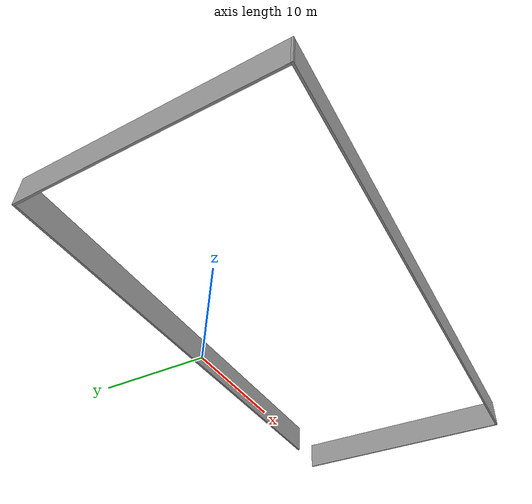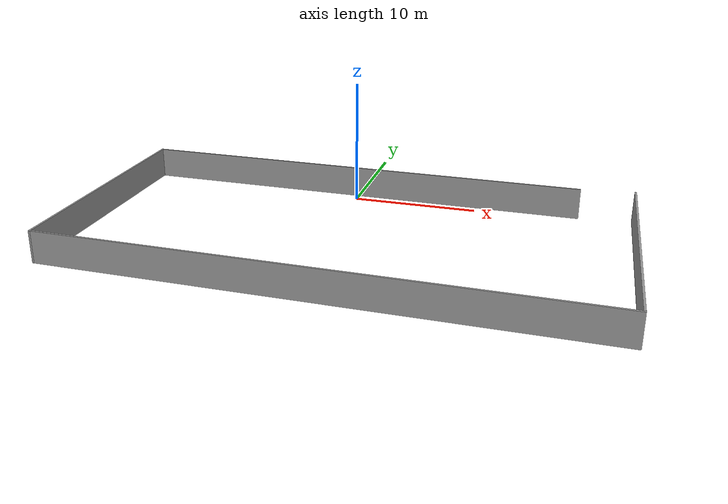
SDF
<?xml version='1.0'?>
<sdf version='1.6'>
  <model name='assignment_room'>
    <pose frame=''>1.89682 -8.62625 0 0 -0 0</pose>
    <link name='Wall_10'>
      <collision name='Wall_10_Collision'>
        <geometry>
          <box>
            <size>41.25 0.15 2.5</size>
          </box>
        </geometry>
        <pose frame=''>0 0 1.25 0 -0 0</pose>
      </collision>
      <visual name='Wall_10_Visual'>
        <pose frame=''>0 0 1.25 0 -0 0</pose>
        <geometry>
          <box>
            <size>41.25 0.15 2.5</size>
          </box>
        </geometry>
        <material>
          <script>
            <uri>file://media/materials/scripts/gazebo.material</uri>
            <name>Gazebo/Grey</name>
          </script>
          <ambient>1 1 1 1</ambient>
        </material>
        <meta>
          <layer>0</layer>
        </meta>
      </visual>
      <pose frame=''>0 -9.925 0 0 -0 3.14159</pose>
    </link>
    <link name='Wall_12'>
      <collision name='Wall_12_Collision'>
        <geometry>
          <box>
            <size>20 0.15 2.5</size>
          </box>
        </geometry>
        <pose frame=''>0 0 1.25 0 -0 0</pose>
      </collision>
      <visual name='Wall_12_Visual'>
        <pose frame=''>0 0 1.25 0 -0 0</pose>
        <geometry>
          <box>
            <size>20 0.15 2.5</size>
          </box>
        </geometry>
        <material>
          <script>
            <uri>file://media/materials/scripts/gazebo.material</uri>
            <name>Gazebo/Grey</name>
          </script>
          <ambient>1 1 1 1</ambient>
        </material>
        <meta>
          <layer>0</layer>
        </meta>
      </visual>
      <pose frame=''>20.55 0 0 0 -0 1.5708</pose>
    </link>
    <link name='Wall_15'>
      <collision name='Wall_15_Collision'>
        <geometry>
          <box>
            <size>19.5 0.15 2.5</size>
          </box>
        </geometry>
        <pose frame=''>0 0 1.25 0 -0 0</pose>
      </collision>
      <visual name='Wall_15_Visual'>
        <pose frame=''>0 0 1.25 0 -0 0</pose>
        <geometry>
          <box>
            <size>19.5 0.15 2.5</size>
          </box>
        </geometry>
        <material>
          <script>
            <uri>file://media/materials/scripts/gazebo.material</uri>
            <name>Gazebo/Grey</name>
          </script>
          <ambient>1 1 1 1</ambient>
        </material>
        <meta>
          <layer>0</layer>
        </meta>
      </visual>
      <pose frame=''>-20.55 -0.25 0 0 -0 1.5708</pose>
    </link>
    <link name='Wall_16'>
      <collision name='Wall_16_Collision'>
        <geometry>
          <box>
            <size>37 0.15 2.5</size>
          </box>
        </geometry>
        <pose frame=''>0 0 1.25 0 -0 0</pose>
      </collision>
      <visual name='Wall_16_Visual'>
        <pose frame=''>0 0 1.25 0 -0 0</pose>
        <geometry>
          <box>
            <size>37 0.15 2.5</size>
          </box>
        </geometry>
        <material>
          <script>
            <uri>file://media/materials/scripts/gazebo.material</uri>
            <name>Gazebo/Grey</name>
          </script>
          <ambient>1 1 1 1</ambient>
        </material>
        <meta>
          <layer>0</layer>
        </meta>
      </visual>
      <pose frame=''>-2.125 9.425 0 0 -0 0</pose>
    </link>
    <static>1</static>
  </model>
</sdf>
